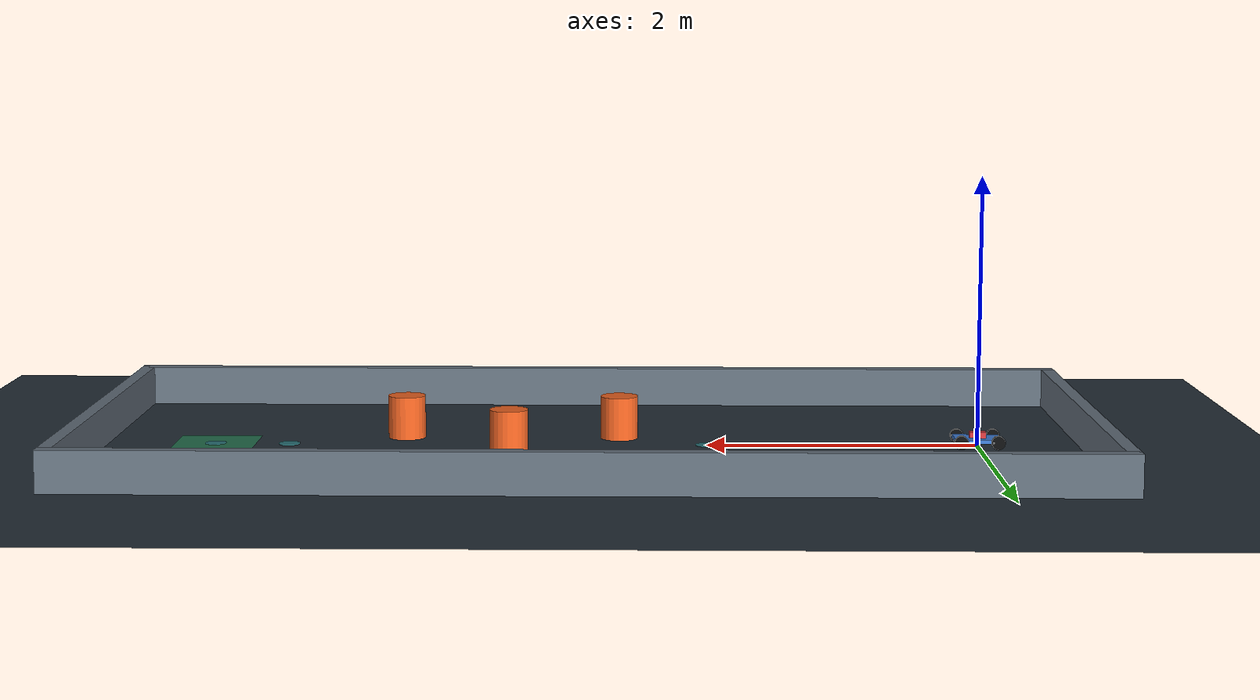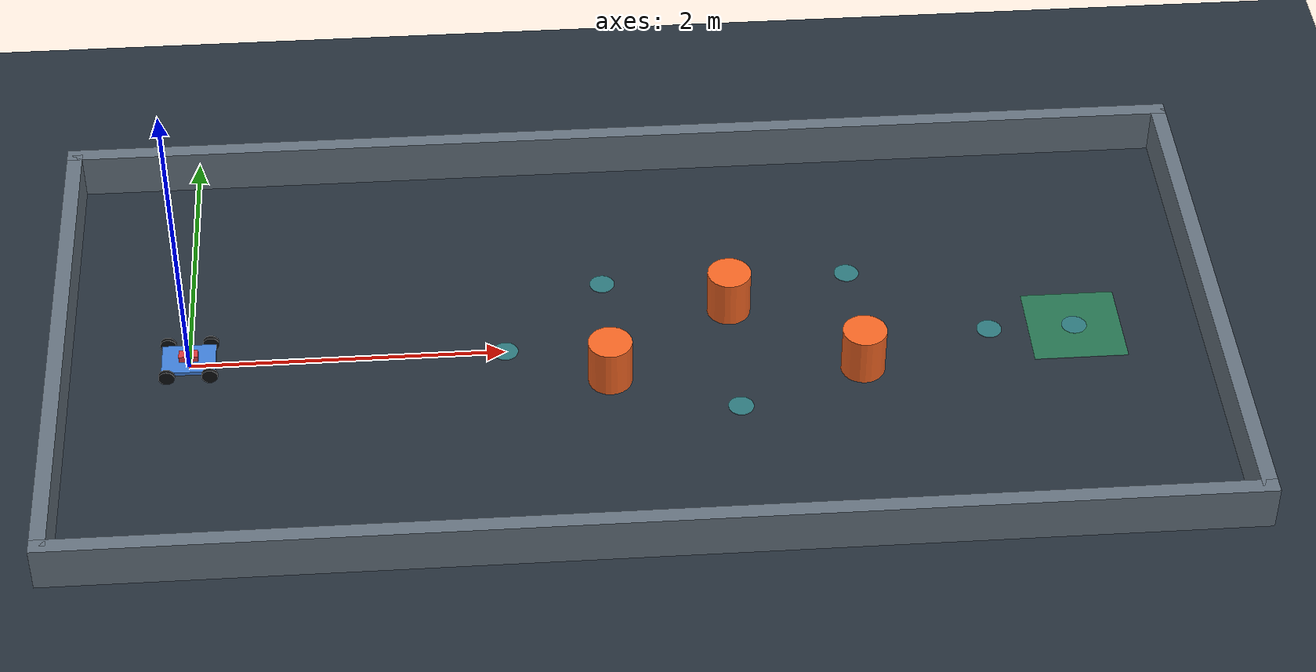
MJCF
<mujoco model="chassis_lab"><compiler angle="radian" inertiafromgeom="true" /><option timestep="0.002" gravity="0 0 -9.81" integrator="implicitfast" cone="elliptic" iterations="60" /><default><geom friction="0.7107207876328979 0.002 0.0001" condim="3" solref="0.01 1" solimp="0.95 0.99 0.001" /></default><visual><global offwidth="1000" offheight="700" /></visual><worldbody><light pos="2 0 5" dir="0 0 -1" diffuse="0.8 0.8 0.8" /><geom name="floor" type="plane" size="8 5 0.1" rgba="0.15 0.19 0.23 1" /><geom name="wall_0" type="box" pos="-0.8 0 0.15" size="0.05 1.8 0.15" rgba="0.4 0.45 0.5 1" /><geom name="wall_1" type="box" pos="6.5 0 0.15" size="0.05 1.8 0.15" rgba="0.4 0.45 0.5 1" /><geom name="wall_2" type="box" pos="2.85 -1.8 0.15" size="3.7 0.05 0.15" rgba="0.4 0.45 0.5 1" /><geom name="wall_3" type="box" pos="2.85 1.8 0.15" size="3.7 0.05 0.15" rgba="0.4 0.45 0.5 1" /><geom name="obstacle_0" type="cylinder" pos="2.65 -0.3 0.16" size="0.14 0.16" rgba="0.96 0.4 0.14 1" /><geom name="obstacle_1" type="cylinder" pos="3.45 0.3 0.16" size="0.14 0.16" rgba="0.96 0.4 0.14 1" /><geom name="obstacle_2" type="cylinder" pos="4.25 -0.3 0.16" size="0.14 0.16" rgba="0.96 0.4 0.14 1" /><site name="waypoint_0" type="cylinder" pos="2.0 0.0 0.004" size="0.08 0.003" rgba="0.25 0.8 0.8 0.5" /><site name="waypoint_1" type="cylinder" pos="2.65 0.6 0.004" size="0.08 0.003" rgba="0.25 0.8 0.8 0.5" /><site name="waypoint_2" type="cylinder" pos="3.45 -0.6 0.004" size="0.08 0.003" rgba="0.25 0.8 0.8 0.5" /><site name="waypoint_3" type="cylinder" pos="4.25 0.6 0.004" size="0.08 0.003" rgba="0.25 0.8 0.8 0.5" /><site name="waypoint_4" type="cylinder" pos="5.1 0.0 0.004" size="0.08 0.003" rgba="0.25 0.8 0.8 0.5" /><site name="waypoint_5" type="cylinder" pos="5.65 0.0 0.004" size="0.08 0.003" rgba="0.25 0.8 0.8 0.5" /><site name="parking" type="box" pos="5.65 0 0.003" size="0.3 0.3 0.002" rgba="0.2 0.9 0.5 0.4" /><body name="chassis" pos="0 0 0.0548"><freejoint name="root" /><geom name="frame" type="box" size="0.17 0.125 0.0125" mass="1.83" rgba="0.25 0.5 0.85 1" /><geom name="battery" type="box" pos="0.0 0.0 0.035" size="0.06 0.0325 0.0225" mass="0.35" rgba="0.85 0.23 0.25 1" /><geom name="motor_mass_0" type="box" pos="0.135 0.105 -0.02" size="0.018 0.015 0.0075" mass="0.28" rgba="0.3 0.3 0.3 1" /><body name="wheel_0" pos="0.135 0.15 0"><joint name="axle_0" type="hinge" axis="0 1 0" damping="0.001" armature="0.0001" /><geom name="tire_0" type="cylinder" size="0.0508 0.0125" quat="0.7071067812 0.7071067812 0 0" mass="0.12" rgba="0.055 0.06 0.065 1" /><site type="sphere" pos="0.035559999999999994 0.013 0" size="0.006" rgba="1 1 1 1" /></body><geom name="motor_mass_1" type="box" pos="-0.135 0.105 -0.02" size="0.018 0.015 0.0075" mass="0.28" rgba="0.3 0.3 0.3 1" /><body name="wheel_1" pos="-0.135 0.15 0"><joint name="axle_1" type="hinge" axis="0 1 0" damping="0.001" armature="0.0001" /><geom name="tire_1" type="cylinder" size="0.0508 0.0125" quat="0.7071067812 0.7071067812 0 0" mass="0.12" rgba="0.055 0.06 0.065 1" /><site type="sphere" pos="0.035559999999999994 0.013 0" size="0.006" rgba="1 1 1 1" /></body><geom name="motor_mass_2" type="box" pos="0.135 -0.105 -0.02" size="0.018 0.015 0.0075" mass="0.28" rgba="0.3 0.3 0.3 1" /><body name="wheel_2" pos="0.135 -0.15 0"><joint name="axle_2" type="hinge" axis="0 1 0" damping="0.001" armature="0.0001" /><geom name="tire_2" type="cylinder" size="0.0508 0.0125" quat="0.7071067812 0.7071067812 0 0" mass="0.12" rgba="0.055 0.06 0.065 1" /><site type="sphere" pos="0.035559999999999994 0.013 0" size="0.006" rgba="1 1 1 1" /></body><geom name="motor_mass_3" type="box" pos="-0.135 -0.105 -0.02" size="0.018 0.015 0.0075" mass="0.28" rgba="0.3 0.3 0.3 1" /><body name="wheel_3" pos="-0.135 -0.15 0"><joint name="axle_3" type="hinge" axis="0 1 0" damping="0.001" armature="0.0001" /><geom name="tire_3" type="cylinder" size="0.0508 0.0125" quat="0.7071067812 0.7071067812 0 0" mass="0.12" rgba="0.055 0.06 0.065 1" /><site type="sphere" pos="0.035559999999999994 0.013 0" size="0.006" rgba="1 1 1 1" /></body></body></worldbody><actuator><motor name="drive_0" joint="axle_0" gear="1" ctrllimited="true" ctrlrange="-1.05 1.05" /><motor name="drive_1" joint="axle_1" gear="1" ctrllimited="true" ctrlrange="-1.05 1.05" /><motor name="drive_2" joint="axle_2" gear="1" ctrllimited="true" ctrlrange="-1.05 1.05" /><motor name="drive_3" joint="axle_3" gear="1" ctrllimited="true" ctrlrange="-1.05 1.05" /></actuator></mujoco>
